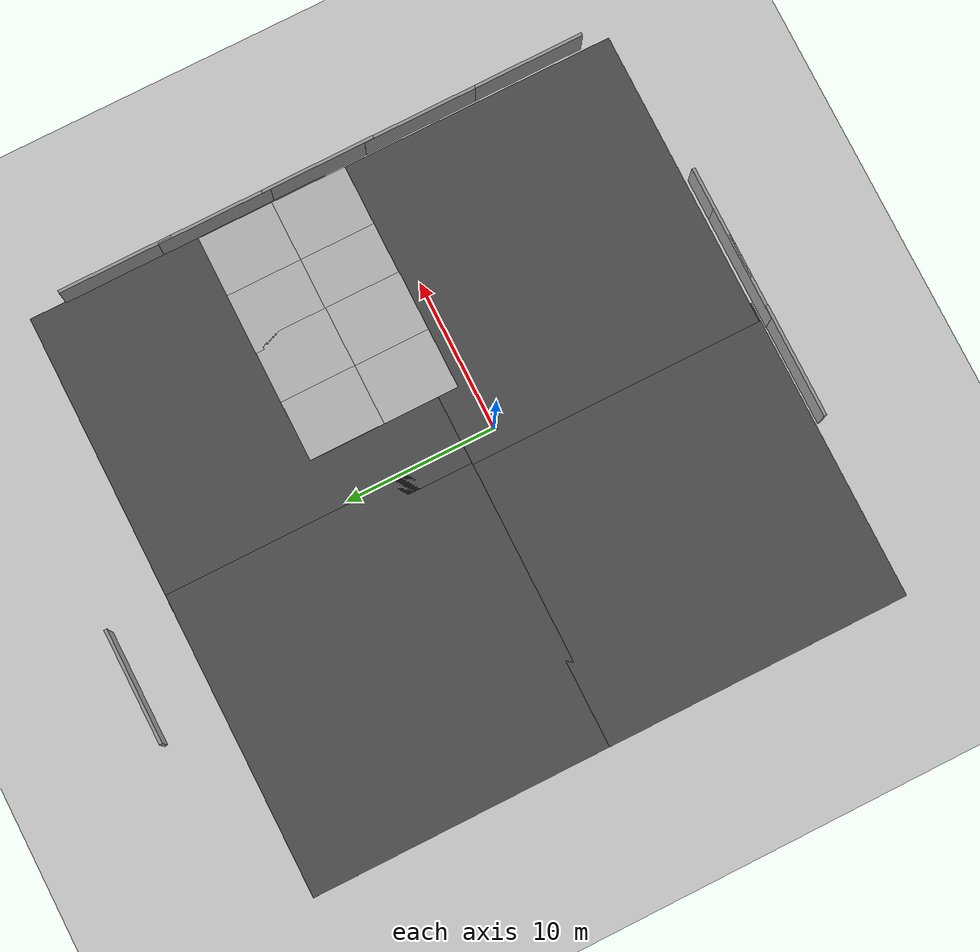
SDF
<sdf version="1.6">
 <world name="default">
  <model name="ground_plane">
   <static>1</static>
   <link name="link">
    <collision name="collision">
     <geometry><plane><normal>0 0 1</normal><size>100 100</size></plane></geometry>
     <surface><friction><ode><mu>100</mu><mu2>50</mu2></ode></friction></surface>
    </collision>
    <visual name="visual">
     <cast_shadows>0</cast_shadows>
     <geometry><plane><normal>0 0 1</normal><size>100 100</size></plane></geometry>
     <material>
      <script><uri>file://media/materials/scripts/gazebo.material</uri><name>Gazebo/Grey</name></script>
     </material>
    </visual>
   </link>
  </model>
  <model name="asphalt_plane">
   <static>1</static>
   <link name="link">
    <collision name="collision">
     <geometry><box><size>20 20 0.1</size></box></geometry>
     <surface><friction><ode><mu>100</mu><mu2>50</mu2></ode></friction></surface>
    </collision>
    <visual name="visual">
     <cast_shadows>0</cast_shadows>
     <geometry><box><size>20 20 0.1</size></box></geometry>
     <material>
      <script>
       <uri>model://asphalt_plane/materials/scripts</uri>
       <uri>model://asphalt_plane/materials/textures</uri>
       <name>vrc/asphalt</name>
      </script>
     </material>
    </visual>
   </link>
   <pose>-10.1692 -7.43707 0 0 -0 0</pose>
  </model>
  <model name="asphalt_plane_clone">
   <static>1</static>
   <link name="link">
    <collision name="collision">
     <geometry><box><size>20 20 0.1</size></box></geometry>
     <surface><friction><ode><mu>100</mu><mu2>50</mu2></ode></friction></surface>
    </collision>
    <visual name="visual">
     <cast_shadows>0</cast_shadows>
     <geometry><box><size>20 20 0.1</size></box></geometry>
     <material>
      <script>
       <uri>model://asphalt_plane/materials/scripts</uri>
       <uri>model://asphalt_plane/materials/textures</uri>
       <name>vrc/asphalt</name>
      </script>
     </material>
    </visual>
   </link>
   <pose>-10.1603 12.171 0 0 -0 0</pose>
  </model>
  <model name="asphalt_plane_clone_clone">
   <static>1</static>
   <link name="link">
    <collision name="collision">
     <geometry><box><size>20 20 0.1</size></box></geometry>
     <surface><friction><ode><mu>100</mu><mu2>50</mu2></ode></friction></surface>
    </collision>
    <visual name="visual">
     <cast_shadows>0</cast_shadows>
     <geometry><box><size>20 20 0.1</size></box></geometry>
     <material>
      <script>
       <uri>model://asphalt_plane/materials/scripts</uri>
       <uri>model://asphalt_plane/materials/textures</uri>
       <name>vrc/asphalt</name>
      </script>
     </material>
    </visual>
   </link>
   <pose>8.71597 12.1785 0 0 -0 0</pose>
  </model>
  <model name="asphalt_plane_clone_clone_0">
   <static>1</static>
   <link name="link">
    <collision name="collision">
     <geometry><box><size>20 20 0.1</size></box></geometry>
     <surface><friction><ode><mu>100</mu><mu2>50</mu2></ode></friction></surface>
    </collision>
    <visual name="visual">
     <cast_shadows>0</cast_shadows>
     <geometry><box><size>20 20 0.1</size></box></geometry>
     <material>
      <script>
       <uri>model://asphalt_plane/materials/scripts</uri>
       <uri>model://asphalt_plane/materials/textures</uri>
       <name>vrc/asphalt</name>
      </script>
     </material>
    </visual>
   </link>
   <pose>8.60996 -7.34898 0 0 -0 0</pose>
  </model>
  <model name="grey_wall">
   <static>1</static>
   <link name="link">
    <pose>0 0 1.4 0 -0 0</pose>
    <collision name="collision"><geometry><box><size>7.5 0.2 2.8</size></box></geometry></collision>
    <visual name="visual">
     <cast_shadows>0</cast_shadows>
     <geometry><box><size>7.5 0.2 2.8</size></box></geometry>
     <material>
      <script>
       <uri>model://grey_wall/materials/scripts</uri>
       <uri>model://grey_wall/materials/textures</uri>
       <name>vrc/grey_wall</name>
      </script>
     </material>
    </visual>
   </link>
   <pose>-4.8114 -17.6626 0 0 -0 0</pose>
  </model>
  <model name="grey_wall_clone">
   <static>1</static>
   <link name="link">
    <pose>0 0 1.4 0 -0 0</pose>
    <collision name="collision"><geometry><box><size>7.5 0.2 2.8</size></box></geometry></collision>
    <visual name="visual">
     <cast_shadows>0</cast_shadows>
     <geometry><box><size>7.5 0.2 2.8</size></box></geometry>
     <material>
      <script>
       <uri>model://grey_wall/materials/scripts</uri>
       <uri>model://grey_wall/materials/textures</uri>
       <name>vrc/grey_wall</name>
      </script>
     </material>
    </visual>
   </link>
   <pose>1.84642 -17.6367 0 0 -0 0</pose>
  </model>
  <model name="grey_wall_clone_0">
   <static>1</static>
   <link name="link">
    <pose>0 0 1.4 0 -0 0</pose>
    <collision name="collision"><geometry><box><size>7.5 0.2 2.8</size></box></geometry></collision>
    <visual name="visual">
     <cast_shadows>0</cast_shadows>
     <geometry><box><size>7.5 0.2 2.8</size></box></geometry>
     <material>
      <script>
       <uri>model://grey_wall/materials/scripts</uri>
       <uri>model://grey_wall/materials/textures</uri>
       <name>vrc/grey_wall</name>
      </script>
     </material>
    </visual>
   </link>
   <pose>4.62088 -17.6372 0 0 -0 0</pose>
  </model>
  <model name="grey_wall_clone_clone">
   <static>1</static>
   <link name="link">
    <pose>0 0 1.4 0 -0 0</pose>
    <collision name="collision"><geometry><box><size>7.5 0.2 2.8</size></box></geometry></collision>
    <visual name="visual">
     <cast_shadows>0</cast_shadows>
     <geometry><box><size>7.5 0.2 2.8</size></box></geometry>
     <material>
      <script>
       <uri>model://grey_wall/materials/scripts</uri>
       <uri>model://grey_wall/materials/textures</uri>
       <name>vrc/grey_wall</name>
      </script>
     </material>
    </visual>
   </link>
   <pose>-4.48764 26.0166 0 0 -0 0</pose>
  </model>
  <model name="grey_wall_clone_clone_clone">
   <static>1</static>
   <link name="link">
    <pose>0 0 1.4 0 -0 0</pose>
    <collision name="collision"><geometry><box><size>7.5 0.2 2.8</size></box></geometry></collision>
    <visual name="visual">
     <cast_shadows>0</cast_shadows>
     <geometry><box><size>7.5 0.2 2.8</size></box></geometry>
     <material>
      <script>
       <uri>model://grey_wall/materials/scripts</uri>
       <uri>model://grey_wall/materials/textures</uri>
       <name>vrc/grey_wall</name>
      </script>
     </material>
    </visual>
   </link>
   <pose>18.7544 16.0387 0 0 0 -1.56734</pose>
  </model>
  <model name="grey_wall_clone_clone_clone_clone">
   <static>1</static>
   <link name="link">
    <pose>0 0 1.4 0 -0 0</pose>
    <collision name="collision"><geometry><box><size>7.5 0.2 2.8</size></box></geometry></collision>
    <visual name="visual">
     <cast_shadows>0</cast_shadows>
     <geometry><box><size>7.5 0.2 2.8</size></box></geometry>
     <material>
      <script>
       <uri>model://grey_wall/materials/scripts</uri>
       <uri>model://grey_wall/materials/textures</uri>
       <name>vrc/grey_wall</name>
      </script>
     </material>
    </visual>
   </link>
   <pose>18.767 9.41754 0 0 0 -1.56734</pose>
  </model>
  <model name="grey_wall_clone_clone_clone_clone_0">
   <static>1</static>
   <link name="link">
    <pose>0 0 1.4 0 -0 0</pose>
    <collision name="collision"><geometry><box><size>7.5 0.2 2.8</size></box></geometry></collision>
    <visual name="visual">
     <cast_shadows>0</cast_shadows>
     <geometry><box><size>7.5 0.2 2.8</size></box></geometry>
     <material>
      <script>
       <uri>model://grey_wall/materials/scripts</uri>
       <uri>model://grey_wall/materials/textures</uri>
       <name>vrc/grey_wall</name>
      </script>
     </material>
    </visual>
   </link>
   <pose>18.7963 2.45369 0 0 0 -1.56734</pose>
  </model>
  <model name="grey_wall_clone_clone_clone_clone_1">
   <static>1</static>
   <link name="link">
    <pose>0 0 1.4 0 -0 0</pose>
    <collision name="collision"><geometry><box><size>7.5 0.2 2.8</size></box></geometry></collision>
    <visual name="visual">
     <cast_shadows>0</cast_shadows>
     <geometry><box><size>7.5 0.2 2.8</size></box></geometry>
     <material>
      <script>
       <uri>model://grey_wall/materials/scripts</uri>
       <uri>model://grey_wall/materials/textures</uri>
       <name>vrc/grey_wall</name>
      </script>
     </material>
    </visual>
   </link>
   <pose>18.8058 -4.41342 0 0 0 -1.56734</pose>
  </model>
  <model name="grey_wall_clone_clone_clone_clone_2">
   <static>1</static>
   <link name="link">
    <pose>0 0 1.4 0 -0 0</pose>
    <collision name="collision"><geometry><box><size>7.5 0.2 2.8</size></box></geometry></collision>
    <visual name="visual">
     <cast_shadows>0</cast_shadows>
     <geometry><box><size>7.5 0.2 2.8</size></box></geometry>
     <material>
      <script>
       <uri>model://grey_wall/materials/scripts</uri>
       <uri>model://grey_wall/materials/textures</uri>
       <name>vrc/grey_wall</name>
      </script>
     </material>
    </visual>
   </link>
   <pose>18.8343 -11.7301 0 0 0 -1.56734</pose>
  </model>
  <model name="mud_box">
   <static>1</static>
   <link name="link">
    <collision name="collision"><geometry><box><size>8 10 0.2</size></box></geometry></collision>
    <visual name="visual_1">
     <pose>-2 2.5 0 0 -0 0</pose>
     <cast_shadows>0</cast_shadows>
     <geometry><box><size>4 5 0.2</size></box></geometry>
     <material>
      <script>
       <uri>model://mud_box/materials/scripts</uri>
       <uri>model://mud_box/materials/textures</uri>
       <name>vrc/mud</name>
      </script>
     </material>
    </visual>
    <visual name="visual_2">
     <pose>2 2.5 0 0 -0 0</pose>
     <cast_shadows>0</cast_shadows>
     <geometry><box><size>4 5 0.2</size></box></geometry>
     <material>
      <script>
       <uri>model://mud_box/materials/scripts</uri>
       <uri>model://mud_box/materials/textures</uri>
       <name>vrc/mud</name>
      </script>
     </material>
    </visual>
    <visual name="visual_3">
     <pose>2 -2.5 0 0 -0 0</pose>
     <cast_shadows>0</cast_shadows>
     <geometry><box><size>4 5 0.2</size></box></geometry>
     <material>
      <script>
       <uri>model://mud_box/materials/scripts</uri>
       <uri>model://mud_box/materials/textures</uri>
       <name>vrc/mud</name>
      </script>
     </material>
    </visual>
    <visual name="visual_4">
     <pose>-2 -2.5 0 0 -0 0</pose>
     <cast_shadows>0</cast_shadows>
     <geometry><box><size>4 5 0.2</size></box></geometry>
     <material>
      <script>
       <uri>model://mud_box/materials/scripts</uri>
       <uri>model://mud_box/materials/textures</uri>
       <name>vrc/mud</name>
      </script>
     </material>
    </visual>
   </link>
   <pose>14.6137 5.86275 0 0 -0 0</pose>
  </model>
  <model name="mud_box_clone">
   <static>1</static>
   <link name="link">
    <collision name="collision"><geometry><box><size>8 10 0.2</size></box></geometry></collision>
    <visual name="visual_1">
     <pose>-2 2.5 0 0 -0 0</pose>
     <cast_shadows>0</cast_shadows>
     <geometry><box><size>4 5 0.2</size></box></geometry>
     <material>
      <script>
       <uri>model://mud_box/materials/scripts</uri>
       <uri>model://mud_box/materials/textures</uri>
       <name>vrc/mud</name>
      </script>
     </material>
    </visual>
    <visual name="visual_2">
     <pose>2 2.5 0 0 -0 0</pose>
     <cast_shadows>0</cast_shadows>
     <geometry><box><size>4 5 0.2</size></box></geometry>
     <material>
      <script>
       <uri>model://mud_box/materials/scripts</uri>
       <uri>model://mud_box/materials/textures</uri>
       <name>vrc/mud</name>
      </script>
     </material>
    </visual>
    <visual name="visual_3">
     <pose>2 -2.5 0 0 -0 0</pose>
     <cast_shadows>0</cast_shadows>
     <geometry><box><size>4 5 0.2</size></box></geometry>
     <material>
      <script>
       <uri>model://mud_box/materials/scripts</uri>
       <uri>model://mud_box/materials/textures</uri>
       <name>vrc/mud</name>
      </script>
     </material>
    </visual>
    <visual name="visual_4">
     <pose>-2 -2.5 0 0 -0 0</pose>
     <cast_shadows>0</cast_shadows>
     <geometry><box><size>4 5 0.2</size></box></geometry>
     <material>
      <script>
       <uri>model://mud_box/materials/scripts</uri>
       <uri>model://mud_box/materials/textures</uri>
       <name>vrc/mud</name>
      </script>
     </material>
    </visual>
   </link>
   <pose>7.23773 5.83307 0 0 -0 0</pose>
  </model>
  <light name="sun" type="directional">
   <pose>0 0 10 0 -0 0</pose>
   <diffuse>0.8 0.8 0.8 1</diffuse>
   <specular>0.2 0.2 0.2 1</specular>
   <attenuation>
    <range>1000</range>
    <constant>0.9</constant>
    <linear>0.01</linear>
    <quadratic>0.001</quadratic>
   </attenuation>
   <direction>-0.5 0.1 -0.9</direction>
  </light>
  <gravity>0 0 -9.8</gravity>
  <magnetic_field>6e-06 2.3e-05 -4.2e-05</magnetic_field>
  <atmosphere type="adiabatic"/>
  <physics name="default_physics" default="0" type="ode">
   <max_step_size>0.001</max_step_size>
   <real_time_factor>1</real_time_factor>
   <real_time_update_rate>1000</real_time_update_rate>
  </physics>
  <scene><ambient>0.4 0.4 0.4 1</ambient><background>0.7 0.7 0.7 1</background><shadows>1</shadows></scene>
  <audio><device>default</device></audio>
  <spherical_coordinates>
   <surface_model>EARTH_WGS84</surface_model>
   <latitude_deg>47.840640</latitude_deg>
   <longitude_deg>10.619944</longitude_deg>
   <elevation>740.0</elevation>
   <heading_deg>180</heading_deg>
  </spherical_coordinates>
  <include><uri>model://mariam_agent_description</uri></include>
 </world>
</sdf>

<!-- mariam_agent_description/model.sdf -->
<sdf version="1.5">
  <model name="mariam_agent">
  <static>false</static>

  <!-- ****************** ROBOT BASE FOOTPRINT ***************************  -->
  <pose>0.0 0.0 0.0 0.0 0.0 0.0</pose>
  <link name="base_footprint"/>

  <!-- ********************** ROBOT BASE *********************************  -->
  <link name="base_link">

    <collision name="base_collision">
      <pose>0 0 0 0 0 0</pose>
      <geometry>
        <box>
          <size> 0.24 0.20 0.06</size>
        </box>
      </geometry>
    </collision>

    <visual name="base_visual">
      <pose>0 0 0 0 0 0</pose>
      <geometry>
        <box>
          <size> 0.24 0.20 0.06</size>
        </box>
      </geometry>
      <material>
        <ambient>1.0 0.0 0.0 1.0</ambient>
        <diffuse>1.0 0.0 0.0 1.0</diffuse>
        <specular>0.0 0.0 0.0 1.0</specular>
        <emissive>0.0 0.0 0.0 1.0</emissive>
      </material>
    </visual>
  </link>

  <!-- *********************** IMU SENSOR SETUP **************************  -->
  <link name="imu_link">
    <gravity>true</gravity>
    <sensor name="bmb_imu" type="imu">
      <always_on>true</always_on>
      <update_rate>100</update_rate>
      <visualize>true</visualize>
      <imu>
        <orientation>
          <x>
            <noise type="gaussian">
              <mean>0.0</mean>
              <stddev>2e-3</stddev>
            </noise>
          </x>
          <y>
            <noise type="gaussian">
              <mean>0.0</mean>
              <stddev>2e-3</stddev>
            </noise>
          </y>
          <z>
            <noise type="gaussian">
              <mean>0.0</mean>
              <stddev>2e-3</stddev>
            </noise>
          </z>
        </orientation>
        <angular_velocity>
          <x>
            <noise type="gaussian">
              <mean>0.0</mean>
              <stddev>2e-4</stddev>
            </noise>
          </x>
          <y>
            <noise type="gaussian">
              <mean>0.0</mean>
              <stddev>2e-4</stddev>
            </noise>
          </y>
          <z>
            <noise type="gaussian">
              <mean>0.0</mean>
              <stddev>2e-4</stddev>
            </noise>
          </z>
        </angular_velocity>
        <linear_acceleration>
          <x>
            <noise type="gaussian">
              <mean>0.0</mean>
              <stddev>1.7e-2</stddev>
            </noise>
          </x>
          <y>
            <noise type="gaussian">
              <mean>0.0</mean>
              <stddev>1.7e-2</stddev>
            </noise>
          </y>
          <z>
            <noise type="gaussian">
              <mean>0.0</mean>
              <stddev>1.7e-2</stddev>
            </noise>
          </z>
        </linear_acceleration>
      </imu>
      <plugin name="mariam_agent_imu" filename="libgazebo_ros_imu_sensor.so">
        <initial_orientation_as_reference>false</initial_orientation_as_reference>
        <frame_name>imu_link</frame_name>
        <ros>
          <namespace>/imu</namespace>
          <remapping>~/out:=data</remapping>
        </ros>
      </plugin>
    </sensor>
  </link>

  <!-- *********************** GPS SETUP *********************************  -->
  <link name="gps_link">
    <sensor name="bmb_gps" type="gps">
      <always_on>true</always_on>
      <update_rate>10.0</update_rate>
      <gps>
        <position_sensing>
          <horizontal>
            <noise type="gaussian">
              <mean>0.0</mean>
              <stddev>1e-2</stddev>
            </noise>
          </horizontal>
          <vertical>
            <noise type="gaussian">
              <mean>0.0</mean>
              <stddev>1</stddev>
            </noise>
          </vertical>
        </position_sensing>
      </gps>
      <plugin name="mariam_agent_gps" filename="libgazebo_ros_gps_sensor.so">
        <ros>
          <remapping>~/out:=gps/fix</remapping>
        </ros>
      </plugin>
    </sensor>
  </link>

  <!-- *********************** DRIVE WHEELS ******************************  -->
  <link name="drivewheel_left_back_link">
    <pose>-0.09 0.14 0 0 1.570796 1.570796</pose>

    <collision name="drivewheel_left_back_collision">
      <geometry>
        <cylinder>
          <radius>0.055</radius>
          <length>0.065</length>
        </cylinder>
      </geometry>
    </collision>

    <visual name="drivewheel_left_back_visual">
      <geometry>
        <cylinder>
          <radius>0.055</radius>
          <length>0.065</length>
        </cylinder>
      </geometry>
    </visual>
  </link>

  <link name="drivewheel_left_front_link">
    <pose>0.09 0.14 0 0 1.570796 1.570796</pose>

    <collision name="drivewheel_left_front_collision">
      <geometry>
        <cylinder>
          <radius>0.055</radius>
          <length>0.065</length>
        </cylinder>
      </geometry>
    </collision>

    <visual name="drivewheel_left_front_visual">
      <geometry>
        <cylinder>
          <radius>0.055</radius>
          <length>0.065</length>
        </cylinder>
      </geometry>
    </visual>
  </link>

  <link name="drivewheel_right_back_link">
    <pose>-0.09 -0.14 0 0 1.570796 1.570796</pose>

    <collision name="drivewheel_right_back_collision">
      <geometry>
        <cylinder>
          <radius>0.055</radius>
          <length>0.065</length>
        </cylinder>
      </geometry>
    </collision>

    <visual name="drivewheel_right_back_visual">
      <geometry>
        <cylinder>
          <radius>0.055</radius>
          <length>0.065</length>
        </cylinder>
      </geometry>
    </visual>
  </link>

  <link name="drivewheel_right_front_link">
    <pose>0.09 -0.14 0 0 1.570796 1.570796</pose>

    <collision name="drivewheel_right_front_collision">
      <geometry>
        <cylinder>
          <radius>0.055</radius>
          <length>0.065</length>
        </cylinder>
      </geometry>
    </collision>

    <visual name="drivewheel_right_front_visual">
      <geometry>
        <cylinder>
          <radius>0.055</radius>
          <length>0.065</length>
        </cylinder>
      </geometry>
    </visual>
  </link>

  <!-- ************************ JOINTS ***********************************  -->
  <!-- Pose of the joint is the same as the child link frame -->
  <!-- Axis is the axis of rotation relative to the child link frame -->

  <joint name="base_joint" type="fixed">
    <parent>base_footprint</parent>
    <child>base_link</child>
    <pose>0 0 0 0 0 0</pose>
  </joint>

  <joint name="drivewheel_left_back_joint" type="revolute">
    <parent>base_link</parent>
    <child>drivewheel_left_back_link</child>
    <pose>0 0 0 0 0 0</pose>
    <axis>
      <xyz>0 0 1</xyz>
    </axis>
  </joint>

  <joint name="drivewheel_left_front_joint" type="revolute">
    <parent>base_link</parent>
    <child>drivewheel_left_front_link</child>
    <pose>0 0 0 0 0 0</pose>
    <axis>
      <xyz>0 0 1</xyz>
    </axis>
  </joint>

  <joint name="drivewheel_right_back_joint" type="revolute">
    <parent>base_link</parent>
    <child>drivewheel_right_back_link</child>
    <pose>0 0 0 0 0 0</pose>
    <axis>
      <xyz>0 0 1</xyz>
    </axis>
  </joint>

  <joint name="drivewheel_right_front_joint" type="revolute">
    <parent>base_link</parent>
    <child>drivewheel_right_front_link</child>
    <pose>0 0 0 0 0 0</pose>
    <axis>
      <xyz>0 0 1</xyz>
    </axis>
  </joint>

  <joint name="imu_joint" type="fixed">
    <parent>base_link</parent>
    <child>imu_link</child>
    <pose>0 0 0 0 0 0</pose>
  </joint>

  <joint name="gps_joint" type="fixed">
    <parent>base_link</parent>
    <child>gps_link</child>
    <pose>0 0 0 0 0 0</pose>
  </joint>

  <joint name="lidar_joint" type="fixed">
    <parent>base_link</parent>
    <child>lidar_link</child>
    <pose>0 0 0 0 0 0</pose>
  </joint>

  <!-- *********************** WHEEL ODOMETRY ***************************    -->
  <plugin name="diff_drive_controller" filename="libgazebo_ros_diff_drive.so">

    <updateRate>30.0</updateRate>
    <robotNamespace>/</robotNamespace>

    <!-- wheels -->
    <num_wheel_pairs>2</num_wheel_pairs>
    <left_joint>drivewheel_left_front_joint</left_joint>
    <left_joint>drivewheel_left_back_joint</left_joint>
    <right_joint>drivewheel_right_back_joint</right_joint>
    <right_joint>drivewheel_right_front_joint</right_joint>

    <!-- kinematics -->
    <wheel_separation>0.18</wheel_separation>
    <wheel_diameter>0.11</wheel_diameter>

    <!-- Limits -->
    <max_wheel_torque>20.0</max_wheel_torque>
    <max_wheel_acceleration>1.0</max_wheel_acceleration>

    <!-- Output -->
    <odometry_frame>odom</odometry_frame>
    <robot_base_frame>base_footprint</robot_base_frame>

    <publish_odom>true</publish_odom>
    <publish_odom_tf>true</publish_odom_tf>
    <update_rate>30.0</update_rate>

    <!-- Odometry source, 0 for ENCODER, 1 for WORLD, defaults to WORLD -->
    <odometry_source>1</odometry_source>

    <ros>
      <remapping>odom:=wheel/odometry</remapping>
    </ros>

  </plugin>

  <!-- *********************** JOINT STATE PUBLISHER *********************   -->

  <plugin name="mariam_agent_joint_state" filename="libgazebo_ros_joint_state_publisher.so">
    <ros>
      <remapping>~/out:=joint_states</remapping>
    </ros>
    <update_rate>30</update_rate>
    <joint_name>drivewheel_left_back_joint</joint_name>
    <joint_name>drivewheel_right_back_joint</joint_name>
    <joint_name>drivewheel_left_front_joint</joint_name>
    <joint_name>drivewheel_right_front_joint</joint_name>
  </plugin>

  <!-- ****************************** LIDAR *****************************    -->
  <link name="lidar_link">
    <inertial>
      <pose>0 0 0.13 0 0 0</pose>
      <inertia>
        <ixx>0.001</ixx>
        <ixy>0.000</ixy>
        <ixz>0.000</ixz>
        <iyy>0.001</iyy>
        <iyz>0.000</iyz>
        <izz>0.001</izz>
      </inertia>
      <mass>0.114</mass>
    </inertial>

    <collision name="lidar_collision">
      <pose>0 0 0.13 0 0 0</pose>
      <geometry>
        <cylinder>
          <radius>0.0508</radius>
          <length>0.18</length>
        </cylinder>
      </geometry>
    </collision>

    <visual name="lidar_visual">
      <pose>0 0 0.13 0 0 0</pose>
      <geometry>
        <cylinder>
          <radius>0.0508</radius>
          <length>0.18</length>
        </cylinder>
      </geometry>
      <material>
        <ambient>0.0 0.0 0.0 1.0</ambient>
        <diffuse>0.0 0.0 0.0 1.0</diffuse>
        <specular>0.0 0.0 0.0 1.0</specular>
        <emissive>0.0 0.0 0.0 1.0</emissive>
      </material>
    </visual>

    <sensor name="lidar" type="ray">
      <pose>0 0 0.215 0 0 0</pose>
      <always_on>true</always_on>
      <visualize>true</visualize>
      <update_rate>5</update_rate>
      <ray>
        <scan>
          <horizontal>
            <samples>120</samples>
            <resolution>1.000000</resolution>
            <min_angle>-3.14159</min_angle>
            <max_angle>3.14159</max_angle>
          </horizontal>
        </scan>
        <range>
          <min>0.3</min>
          <max>15.0</max>
          <resolution>0.015</resolution>
        </range>
        <noise>
          <type>gaussian</type>
          <mean>0.0</mean>
          <stddev>0.01</stddev>
        </noise>
      </ray>
      <plugin name="scan" filename="libgazebo_ros_ray_sensor.so">
        <ros>
          <remapping>~/out:=scan</remapping>
        </ros>
        <output_type>sensor_msgs/LaserScan</output_type>
        <frame_name>lidar_link</frame_name>
      </plugin>
    </sensor>
  </link>

  </model>
</sdf>
